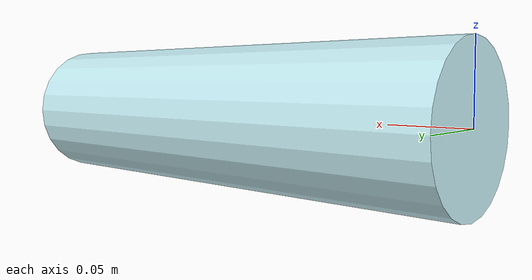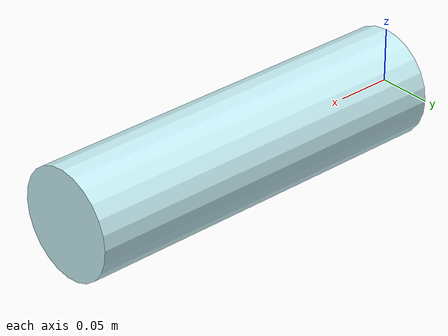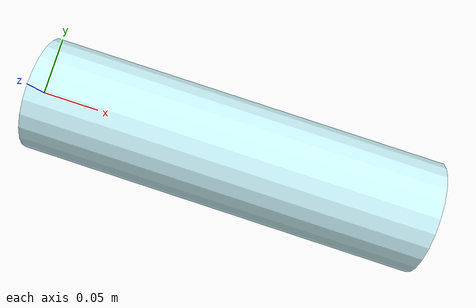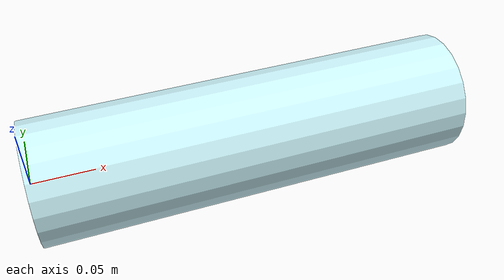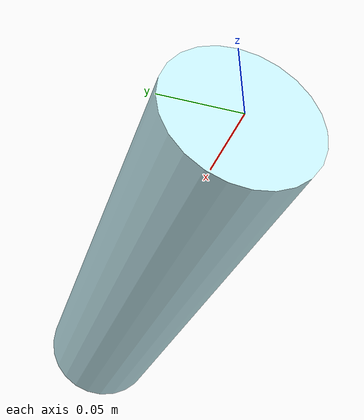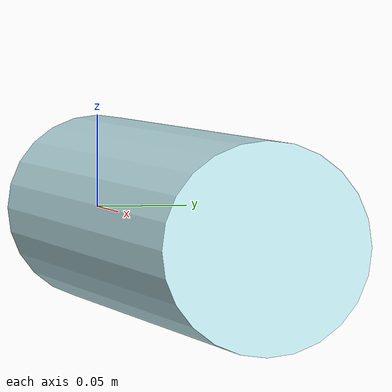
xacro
<?xml version="1.0" ?>
<robot name="NIST_Robot" xmlns:xacro="http://ros.org/wiki/xacro">

	<!-- parameters -->
	<xacro:property name="end_effector_length" value="0.35"/>
	<xacro:property name="end_effector_diameter" value="0.1"/>

	<!-- color definitions -->
  <material name="blue">
    <color rgba="0 0 1 1"/>
  </material>
  <material name="yellow">
    <color rgba="1 1 0 1"/>
  </material>
  <material name="orange">
    <color rgba="1 0.66 0.48 1"/>
  </material>
  <material name="red">
    <color rgba="1 0 0 1"/>
  </material>
  <material name="light_blue">
    <color rgba="0.78 0.94 0.965 1"/>
  </material>

  <!-- robot definitions, also defined in robot urdf -->
	<link name="tool0"/>
	<!-- link definitions -->
	<!--link name="palm"/-->
	<link name="tcp_frame"/>
	<link name="end_effector_link">
		<visual>
			<origin xyz="0.0 0.0 ${end_effector_length * 0.5}" rpy="0 0 0"/>
			<geometry>
				<cylinder radius="${end_effector_diameter * 0.5}" length="${end_effector_length}"/>
			</geometry>
			<material name="light_blue"/>
		</visual>
	</link>

	<!-- joint definitions -->
	<joint name="tool_to_end_effector" type="fixed">
		<origin xyz="0 0 0" rpy="0 1.5708 0"/>
		<parent link="tool0"/>
		<child link="end_effector_link"/>
	</joint>
	<joint name="tool_to_tcp" type="fixed">
		<origin xyz="${end_effector_length} 0 0" rpy="0 0 0"/>
		<parent link="tool0"/>
		<child link="tcp_frame"/>
	</joint>

</robot>
